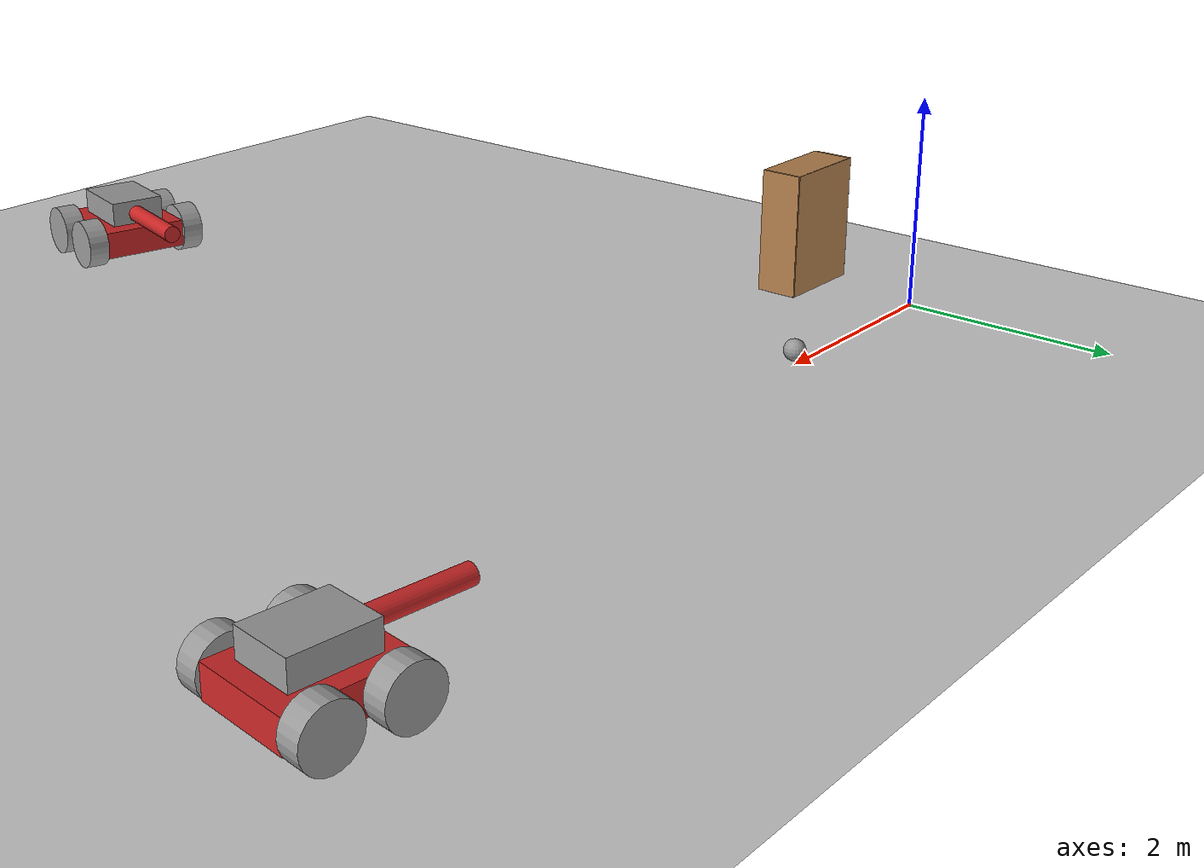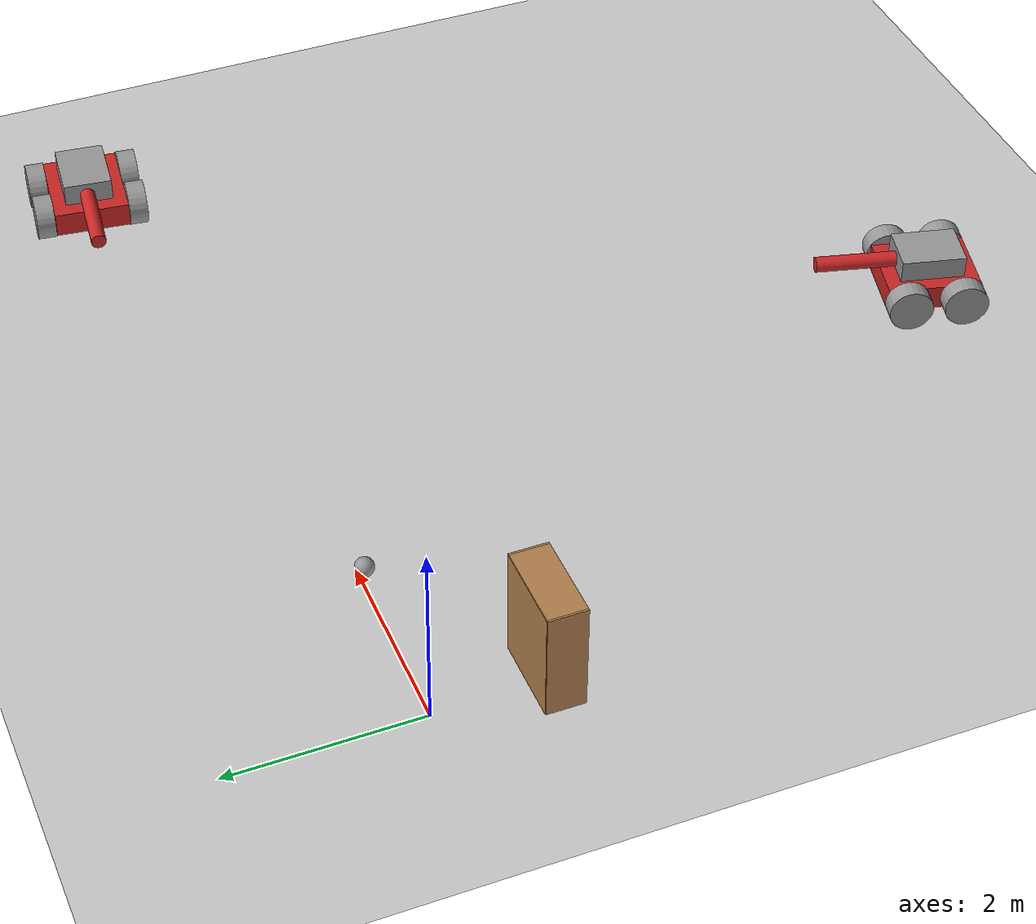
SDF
<sdf version="1.7">
 <world name="default">
  <model name="ground_plane">
   <static>1</static>
   <link name="link">
    <collision name="collision">
     <geometry><plane><normal>0 0 1</normal><size>100 100</size></plane></geometry>
     <surface>
      <contact><collide_bitmask>65535</collide_bitmask></contact>
      <friction><ode><mu>100</mu><mu2>50</mu2></ode></friction>
     </surface>
    </collision>
    <visual name="visual">
     <cast_shadows>0</cast_shadows>
     <geometry><plane><normal>0 0 1</normal><size>100 100</size></plane></geometry>
     <material>
      <script><uri>file://media/materials/scripts/gazebo.material</uri><name>Gazebo/Grey</name></script>
     </material>
    </visual>
   </link>
  </model>
  <model name="bookshelf">
   <static>1</static>
   <link name="link">
    <inertial><mass>1</mass></inertial>
    <collision name="back">
     <pose>0 0.005 0.6 0 -0 0</pose>
     <geometry><box><size>0.9 0.01 1.2</size></box></geometry>
    </collision>
    <visual name="visual1">
     <pose>0 0.005 0.6 0 -0 0</pose>
     <geometry><box><size>0.9 0.01 1.2</size></box></geometry>
     <material>
      <script><uri>file://media/materials/scripts/gazebo.material</uri><name>Gazebo/Wood</name></script>
     </material>
    </visual>
    <collision name="left_side">
     <pose>0.45 -0.195 0.6 0 -0 0</pose>
     <geometry><box><size>0.02 0.4 1.2</size></box></geometry>
    </collision>
    <visual name="visual2">
     <pose>0.45 -0.195 0.6 0 -0 0</pose>
     <geometry><box><size>0.02 0.4 1.2</size></box></geometry>
     <material>
      <script><uri>file://media/materials/scripts/gazebo.material</uri><name>Gazebo/Wood</name></script>
     </material>
    </visual>
    <collision name="right_side">
     <pose>-0.45 -0.195 0.6 0 -0 0</pose>
     <geometry><box><size>0.02 0.4 1.2</size></box></geometry>
    </collision>
    <visual name="visual3">
     <pose>-0.45 -0.195 0.6 0 -0 0</pose>
     <geometry><box><size>0.02 0.4 1.2</size></box></geometry>
     <material>
      <script><uri>file://media/materials/scripts/gazebo.material</uri><name>Gazebo/Wood</name></script>
     </material>
    </visual>
    <collision name="bottom">
     <pose>0 -0.195 0.03 0 -0 0</pose>
     <geometry><box><size>0.88 0.4 0.06</size></box></geometry>
    </collision>
    <visual name="visual4">
     <pose>0 -0.195 0.03 0 -0 0</pose>
     <geometry><box><size>0.88 0.4 0.06</size></box></geometry>
     <material>
      <script><uri>file://media/materials/scripts/gazebo.material</uri><name>Gazebo/Wood</name></script>
     </material>
    </visual>
    <collision name="top">
     <pose>0 -0.195 1.19 0 -0 0</pose>
     <geometry><box><size>0.88 0.4 0.02</size></box></geometry>
    </collision>
    <visual name="visual5">
     <pose>0 -0.195 1.19 0 -0 0</pose>
     <geometry><box><size>0.88 0.4 0.02</size></box></geometry>
     <material>
      <script><uri>file://media/materials/scripts/gazebo.material</uri><name>Gazebo/Wood</name></script>
     </material>
    </visual>
    <collision name="low_shelf">
     <pose>0 -0.195 0.43 0 -0 0</pose>
     <geometry><box><size>0.88 0.4 0.02</size></box></geometry>
    </collision>
    <visual name="visual6">
     <pose>0 -0.195 0.43 0 -0 0</pose>
     <geometry><box><size>0.88 0.4 0.02</size></box></geometry>
     <material>
      <script><uri>file://media/materials/scripts/gazebo.material</uri><name>Gazebo/Wood</name></script>
     </material>
    </visual>
    <collision name="high_shelf">
     <pose>0 -0.195 0.8 0 -0 0</pose>
     <geometry><box><size>0.88 0.4 0.02</size></box></geometry>
    </collision>
    <visual name="visual7">
     <pose>0 -0.195 0.8 0 -0 0</pose>
     <geometry><box><size>0.88 0.4 0.02</size></box></geometry>
     <material>
      <script><uri>file://media/materials/scripts/gazebo.material</uri><name>Gazebo/Wood</name></script>
     </material>
    </visual>
   </link>
   <pose>0.078975 -0.971396 0 0 -0 0</pose>
  </model>
  <model name="Tank_Turtlebot">
   <link name="link_0">
    <inertial>
     <mass>0.21345</mass>
     <inertia>
      <ixx>0.0128699</ixx>
      <ixy>0</ixy>
      <ixz>0</ixz>
      <iyy>0.019027</iyy>
      <iyz>0</iyz>
      <izz>0.0294179</izz>
     </inertia>
    </inertial>
    <pose>-0.154284 0.004173 -0.074722 0 -0 0</pose>
    <visual name="visual">
     <geometry><box><size>1 0.80861 0.263974</size></box></geometry>
     <material>
      <lighting>1</lighting>
      <script><uri>file://media/materials/scripts/gazebo.material</uri><name>Gazebo/Red</name></script>
      <shader type="pixel"><normal_map>__default__</normal_map></shader>
      <ambient>0.157 0.267 0.671 1</ambient>
      <diffuse>0.157 0.267 0.671 1</diffuse>
      <specular>0.1 0.1 0.1 1</specular>
      <emissive>0 0 0 1</emissive>
     </material>
    </visual>
    <collision name="collision">
     <geometry><box><size>1 0.80861 0.263974</size></box></geometry>
     <surface>
      <friction>
       <ode><mu>1</mu><mu2>1</mu2><fdir1>0 0 0</fdir1><slip1>0</slip1><slip2>0</slip2></ode>
       <torsional>
        <coefficient>1</coefficient>
        <patch_radius>0</patch_radius>
        <surface_radius>0</surface_radius>
        <use_patch_radius>1</use_patch_radius>
        <ode><slip>0</slip></ode>
       </torsional>
      </friction>
      <bounce><restitution_coefficient>0</restitution_coefficient><threshold>1e+06</threshold></bounce>
      <contact>
       <collide_without_contact>0</collide_without_contact>
       <collide_without_contact_bitmask>1</collide_without_contact_bitmask>
       <collide_bitmask>1</collide_bitmask>
       <ode>
        <soft_cfm>0</soft_cfm>
        <soft_erp>0.2</soft_erp>
        <kp>1e+13</kp>
        <kd>1</kd>
        <max_vel>0.01</max_vel>
        <min_depth>0</min_depth>
       </ode>
       <bullet>
        <split_impulse>1</split_impulse>
        <split_impulse_penetration_threshold>-0.01</split_impulse_penetration_threshold>
        <soft_cfm>0</soft_cfm>
        <soft_erp>0.2</soft_erp>
        <kp>1e+13</kp>
        <kd>1</kd>
       </bullet>
      </contact>
     </surface>
    </collision>
   </link>
   <link name="link_1">
    <inertial>
     <mass>0.0446444</mass>
     <inertia>
      <ixx>0.00077292</ixx>
      <ixy>0</ixy>
      <ixz>0</ixz>
      <iyy>0.00077292</iyy>
      <iyz>0</iyz>
      <izz>0.00125049</izz>
     </inertia>
    </inertial>
    <pose>-0.454284 -0.503605 -0.070717 1.5707 -0 0</pose>
    <visual name="visual">
     <geometry><cylinder><radius>0.236685</radius><length>0.199236</length></cylinder></geometry>
     <material>
      <lighting>1</lighting>
      <script><uri>file://media/materials/scripts/gazebo.material</uri><name>Gazebo/Grey</name></script>
      <shader type="pixel"><normal_map>__default__</normal_map></shader>
      <ambient>0.3 0.3 0.3 1</ambient>
      <diffuse>0.7 0.7 0.7 1</diffuse>
      <specular>0.01 0.01 0.01 1</specular>
      <emissive>0 0 0 1</emissive>
     </material>
    </visual>
    <collision name="collision">
     <geometry><cylinder><radius>0.236685</radius><length>0.199236</length></cylinder></geometry>
     <surface>
      <friction>
       <ode><mu>1</mu><mu2>1</mu2><fdir1>0 0 0</fdir1><slip1>0</slip1><slip2>0</slip2></ode>
       <torsional>
        <coefficient>1</coefficient>
        <patch_radius>0</patch_radius>
        <surface_radius>0</surface_radius>
        <use_patch_radius>1</use_patch_radius>
        <ode><slip>0</slip></ode>
       </torsional>
      </friction>
      <bounce><restitution_coefficient>0</restitution_coefficient><threshold>1e+06</threshold></bounce>
      <contact>
       <collide_without_contact>0</collide_without_contact>
       <collide_without_contact_bitmask>1</collide_without_contact_bitmask>
       <collide_bitmask>1</collide_bitmask>
       <ode>
        <soft_cfm>0</soft_cfm>
        <soft_erp>0.2</soft_erp>
        <kp>1e+13</kp>
        <kd>1</kd>
        <max_vel>0.01</max_vel>
        <min_depth>0</min_depth>
       </ode>
       <bullet>
        <split_impulse>1</split_impulse>
        <split_impulse_penetration_threshold>-0.01</split_impulse_penetration_threshold>
        <soft_cfm>0</soft_cfm>
        <soft_erp>0.2</soft_erp>
        <kp>1e+13</kp>
        <kd>1</kd>
       </bullet>
      </contact>
     </surface>
    </collision>
   </link>
   <link name="link_1_clone">
    <inertial>
     <mass>0.0446444</mass>
     <inertia>
      <ixx>0.000772923</ixx>
      <ixy>0</ixy>
      <ixz>0</ixz>
      <iyy>0.000772923</iyy>
      <iyz>0</iyz>
      <izz>0.00125049</izz>
     </inertia>
    </inertial>
    <pose>0.145716 -0.503605 -0.070717 1.5707 -0 0</pose>
    <visual name="visual">
     <geometry><cylinder><radius>0.236685</radius><length>0.199236</length></cylinder></geometry>
     <material>
      <lighting>1</lighting>
      <script><uri>file://media/materials/scripts/gazebo.material</uri><name>Gazebo/Grey</name></script>
      <shader type="pixel"><normal_map>__default__</normal_map></shader>
      <ambient>0.3 0.3 0.3 1</ambient>
      <diffuse>0.7 0.7 0.7 1</diffuse>
      <specular>0.01 0.01 0.01 1</specular>
      <emissive>0 0 0 1</emissive>
     </material>
    </visual>
    <collision name="collision">
     <geometry><cylinder><radius>0.236685</radius><length>0.199236</length></cylinder></geometry>
     <surface>
      <friction>
       <ode><mu>1</mu><mu2>1</mu2><fdir1>0 0 0</fdir1><slip1>0</slip1><slip2>0</slip2></ode>
       <torsional>
        <coefficient>1</coefficient>
        <patch_radius>0</patch_radius>
        <surface_radius>0</surface_radius>
        <use_patch_radius>1</use_patch_radius>
        <ode><slip>0</slip></ode>
       </torsional>
      </friction>
      <bounce><restitution_coefficient>0</restitution_coefficient><threshold>1e+06</threshold></bounce>
      <contact>
       <collide_without_contact>0</collide_without_contact>
       <collide_without_contact_bitmask>1</collide_without_contact_bitmask>
       <collide_bitmask>1</collide_bitmask>
       <ode>
        <soft_cfm>0</soft_cfm>
        <soft_erp>0.2</soft_erp>
        <kp>1e+13</kp>
        <kd>1</kd>
        <max_vel>0.01</max_vel>
        <min_depth>0</min_depth>
       </ode>
       <bullet>
        <split_impulse>1</split_impulse>
        <split_impulse_penetration_threshold>-0.01</split_impulse_penetration_threshold>
        <soft_cfm>0</soft_cfm>
        <soft_erp>0.2</soft_erp>
        <kp>1e+13</kp>
        <kd>1</kd>
       </bullet>
      </contact>
     </surface>
    </collision>
   </link>
   <link name="link_1_clone_0">
    <inertial>
     <mass>0.0446444</mass>
     <inertia>
      <ixx>0.000772923</ixx>
      <ixy>0</ixy>
      <ixz>0</ixz>
      <iyy>0.000772923</iyy>
      <iyz>0</iyz>
      <izz>0.00125049</izz>
     </inertia>
    </inertial>
    <pose>0.145716 0.51195 -0.070716 1.5707 -0 0</pose>
    <visual name="visual">
     <geometry><cylinder><radius>0.236685</radius><length>0.199236</length></cylinder></geometry>
     <material>
      <lighting>1</lighting>
      <script><uri>file://media/materials/scripts/gazebo.material</uri><name>Gazebo/Grey</name></script>
      <shader type="pixel"><normal_map>__default__</normal_map></shader>
      <ambient>0.3 0.3 0.3 1</ambient>
      <diffuse>0.7 0.7 0.7 1</diffuse>
      <specular>0.01 0.01 0.01 1</specular>
      <emissive>0 0 0 1</emissive>
     </material>
    </visual>
    <collision name="collision">
     <geometry><cylinder><radius>0.236685</radius><length>0.199236</length></cylinder></geometry>
     <surface>
      <friction>
       <ode><mu>1</mu><mu2>1</mu2><fdir1>0 0 0</fdir1><slip1>0</slip1><slip2>0</slip2></ode>
       <torsional>
        <coefficient>1</coefficient>
        <patch_radius>0</patch_radius>
        <surface_radius>0</surface_radius>
        <use_patch_radius>1</use_patch_radius>
        <ode><slip>0</slip></ode>
       </torsional>
      </friction>
      <bounce><restitution_coefficient>0</restitution_coefficient><threshold>1e+06</threshold></bounce>
      <contact>
       <collide_without_contact>0</collide_without_contact>
       <collide_without_contact_bitmask>1</collide_without_contact_bitmask>
       <collide_bitmask>1</collide_bitmask>
       <ode>
        <soft_cfm>0</soft_cfm>
        <soft_erp>0.2</soft_erp>
        <kp>1e+13</kp>
        <kd>1</kd>
        <max_vel>0.01</max_vel>
        <min_depth>0</min_depth>
       </ode>
       <bullet>
        <split_impulse>1</split_impulse>
        <split_impulse_penetration_threshold>-0.01</split_impulse_penetration_threshold>
        <soft_cfm>0</soft_cfm>
        <soft_erp>0.2</soft_erp>
        <kp>1e+13</kp>
        <kd>1</kd>
       </bullet>
      </contact>
     </surface>
    </collision>
   </link>
   <link name="link_1_clone_1">
    <inertial>
     <mass>0.0446444</mass>
     <inertia>
      <ixx>0.000772923</ixx>
      <ixy>0</ixy>
      <ixz>0</ixz>
      <iyy>0.000772923</iyy>
      <iyz>0</iyz>
      <izz>0.00125049</izz>
     </inertia>
    </inertial>
    <pose>-0.451249 0.510413 -0.070717 1.5707 -0 0</pose>
    <visual name="visual">
     <geometry><cylinder><radius>0.236685</radius><length>0.199236</length></cylinder></geometry>
     <material>
      <lighting>1</lighting>
      <script><uri>file://media/materials/scripts/gazebo.material</uri><name>Gazebo/Grey</name></script>
      <shader type="pixel"><normal_map>__default__</normal_map></shader>
      <ambient>0.3 0.3 0.3 1</ambient>
      <diffuse>0.7 0.7 0.7 1</diffuse>
      <specular>0.01 0.01 0.01 1</specular>
      <emissive>0 0 0 1</emissive>
     </material>
    </visual>
    <collision name="collision">
     <geometry><cylinder><radius>0.236685</radius><length>0.199236</length></cylinder></geometry>
     <surface>
      <friction>
       <ode><mu>1</mu><mu2>1</mu2><fdir1>0 0 0</fdir1><slip1>0</slip1><slip2>0</slip2></ode>
       <torsional>
        <coefficient>1</coefficient>
        <patch_radius>0</patch_radius>
        <surface_radius>0</surface_radius>
        <use_patch_radius>1</use_patch_radius>
        <ode><slip>0</slip></ode>
       </torsional>
      </friction>
      <bounce><restitution_coefficient>0</restitution_coefficient><threshold>1e+06</threshold></bounce>
      <contact>
       <collide_without_contact>0</collide_without_contact>
       <collide_without_contact_bitmask>1</collide_without_contact_bitmask>
       <collide_bitmask>1</collide_bitmask>
       <ode>
        <soft_cfm>0</soft_cfm>
        <soft_erp>0.2</soft_erp>
        <kp>1e+13</kp>
        <kd>1</kd>
        <max_vel>0.01</max_vel>
        <min_depth>0</min_depth>
       </ode>
       <bullet>
        <split_impulse>1</split_impulse>
        <split_impulse_penetration_threshold>-0.01</split_impulse_penetration_threshold>
        <soft_cfm>0</soft_cfm>
        <soft_erp>0.2</soft_erp>
        <kp>1e+13</kp>
        <kd>1</kd>
       </bullet>
      </contact>
     </surface>
    </collision>
   </link>
   <link name="link_2">
    <inertial>
     <mass>0.0852707</mass>
     <inertia>
      <ixx>0.00233413</ixx>
      <ixy>0</ixy>
      <ixz>0</ixz>
      <iyy>0.00377702</iyy>
      <iyz>0</iyz>
      <izz>0.00531271</izz>
     </inertia>
    </inertial>
    <pose>-0.154284 0.004173 0.183791 0 -0 0</pose>
    <visual name="visual">
     <geometry><box><size>0.689458 0.521821 0.237027</size></box></geometry>
     <material>
      <lighting>1</lighting>
      <script><uri>file://media/materials/scripts/gazebo.material</uri><name>Gazebo/Grey</name></script>
      <shader type="pixel"/>
      <emissive>0 0 0 1</emissive>
     </material>
    </visual>
    <collision name="collision">
     <geometry><box><size>0.689458 0.521821 0.237027</size></box></geometry>
     <surface>
      <friction>
       <ode><mu>1</mu><mu2>1</mu2><fdir1>0 0 0</fdir1><slip1>0</slip1><slip2>0</slip2></ode>
       <torsional>
        <coefficient>1</coefficient>
        <patch_radius>0</patch_radius>
        <surface_radius>0</surface_radius>
        <use_patch_radius>1</use_patch_radius>
        <ode><slip>0</slip></ode>
       </torsional>
      </friction>
      <bounce><restitution_coefficient>0</restitution_coefficient><threshold>1e+06</threshold></bounce>
      <contact>
       <collide_without_contact>0</collide_without_contact>
       <collide_without_contact_bitmask>1</collide_without_contact_bitmask>
       <collide_bitmask>1</collide_bitmask>
       <ode>
        <soft_cfm>0</soft_cfm>
        <soft_erp>0.2</soft_erp>
        <kp>1e+13</kp>
        <kd>1</kd>
        <max_vel>0.01</max_vel>
        <min_depth>0</min_depth>
       </ode>
       <bullet>
        <split_impulse>1</split_impulse>
        <split_impulse_penetration_threshold>-0.01</split_impulse_penetration_threshold>
        <soft_cfm>0</soft_cfm>
        <soft_erp>0.2</soft_erp>
        <kp>1e+13</kp>
        <kd>1</kd>
       </bullet>
      </contact>
     </surface>
    </collision>
   </link>
   <link name="link_3">
    <inertial>
     <mass>0.0231283</mass>
     <inertia>
      <ixx>0.00149352</ixx>
      <ixy>0</ixy>
      <ixz>0</ixz>
      <iyy>0.00149352</iyy>
      <iyz>0</iyz>
      <izz>7.696e-05</izz>
     </inertia>
    </inertial>
    <pose>0.627565 -0.013886 0.165156 1.57079 9.6e-05 1.56041</pose>
    <visual name="visual">
     <geometry><cylinder><radius>0.0815772</radius><length>0.868873</length></cylinder></geometry>
     <material>
      <lighting>1</lighting>
      <script><uri>file://media/materials/scripts/gazebo.material</uri><name>Gazebo/Red</name></script>
      <shader type="pixel"><normal_map>__default__</normal_map></shader>
      <ambient>0.3 0.3 0.3 1</ambient>
      <diffuse>0.7 0.7 0.7 1</diffuse>
      <specular>0.01 0.01 0.01 1</specular>
      <emissive>0 0 0 1</emissive>
     </material>
    </visual>
    <collision name="collision">
     <geometry><cylinder><radius>0.081577</radius><length>0.868873</length></cylinder></geometry>
     <surface>
      <friction>
       <ode><mu>1</mu><mu2>1</mu2><fdir1>0 0 0</fdir1><slip1>0</slip1><slip2>0</slip2></ode>
       <torsional>
        <coefficient>1</coefficient>
        <patch_radius>0</patch_radius>
        <surface_radius>0</surface_radius>
        <use_patch_radius>1</use_patch_radius>
        <ode><slip>0</slip></ode>
       </torsional>
      </friction>
      <bounce><restitution_coefficient>0</restitution_coefficient><threshold>1e+06</threshold></bounce>
      <contact>
       <collide_without_contact>0</collide_without_contact>
       <collide_without_contact_bitmask>1</collide_without_contact_bitmask>
       <collide_bitmask>1</collide_bitmask>
       <ode>
        <soft_cfm>0</soft_cfm>
        <soft_erp>0.2</soft_erp>
        <kp>1e+13</kp>
        <kd>1</kd>
        <max_vel>0.01</max_vel>
        <min_depth>0</min_depth>
       </ode>
       <bullet>
        <split_impulse>1</split_impulse>
        <split_impulse_penetration_threshold>-0.01</split_impulse_penetration_threshold>
        <soft_cfm>0</soft_cfm>
        <soft_erp>0.2</soft_erp>
        <kp>1e+13</kp>
        <kd>1</kd>
       </bullet>
      </contact>
     </surface>
    </collision>
   </link>
   <joint name="link_0_JOINT_4" type="fixed">
    <parent>link_0</parent>
    <child>link_2</child>
    <physics>
     <ode><limit><cfm>0</cfm><erp>0.2</erp></limit><suspension><cfm>0</cfm><erp>0.2</erp></suspension></ode>
    </physics>
   </joint>
   <joint name="link_0_JOINT_6" type="revolute">
    <parent>link_0</parent>
    <child>link_1_clone_0</child>
    <axis>
     <xyz>0 0 1</xyz>
     <limit>
      <lower>-1.79769e+308</lower>
      <upper>1.79769e+308</upper>
      <effort>-1</effort>
      <velocity>-1</velocity>
     </limit>
     <dynamics>
      <spring_reference>0</spring_reference>
      <spring_stiffness>0</spring_stiffness>
      <damping>0</damping>
     </dynamics>
    </axis>
    <physics>
     <ode><limit><cfm>0</cfm><erp>0.2</erp></limit><suspension><cfm>0</cfm><erp>0.2</erp></suspension></ode>
    </physics>
   </joint>
   <joint name="link_0_JOINT_7" type="revolute">
    <parent>link_0</parent>
    <child>link_1_clone</child>
    <axis>
     <xyz>0 0 1</xyz>
     <limit>
      <lower>-1.79769e+308</lower>
      <upper>1.79769e+308</upper>
      <effort>-1</effort>
      <velocity>-1</velocity>
     </limit>
     <dynamics>
      <spring_reference>0</spring_reference>
      <spring_stiffness>0</spring_stiffness>
      <damping>0</damping>
     </dynamics>
    </axis>
    <physics>
     <ode><limit><cfm>0</cfm><erp>0.2</erp></limit><suspension><cfm>0</cfm><erp>0.2</erp></suspension></ode>
    </physics>
   </joint>
   <joint name="link_0_JOINT_8" type="revolute">
    <parent>link_0</parent>
    <child>link_1_clone_1</child>
    <axis>
     <xyz>0 0 1</xyz>
     <limit>
      <lower>-1.79769e+308</lower>
      <upper>1.79769e+308</upper>
      <effort>-1</effort>
      <velocity>-1</velocity>
     </limit>
     <dynamics>
      <spring_reference>0</spring_reference>
      <spring_stiffness>0</spring_stiffness>
      <damping>0</damping>
     </dynamics>
    </axis>
    <physics>
     <ode><limit><cfm>0</cfm><erp>0.2</erp></limit><suspension><cfm>0</cfm><erp>0.2</erp></suspension></ode>
    </physics>
   </joint>
   <joint name="link_0_JOINT_9" type="revolute">
    <parent>link_0</parent>
    <child>link_1</child>
    <axis>
     <xyz>1 0 0</xyz>
     <limit>
      <lower>-1.79769e+308</lower>
      <upper>1.79769e+308</upper>
      <effort>-1</effort>
      <velocity>-1</velocity>
     </limit>
     <dynamics>
      <spring_reference>0</spring_reference>
      <spring_stiffness>0</spring_stiffness>
      <damping>0</damping>
     </dynamics>
    </axis>
    <physics>
     <ode><limit><cfm>0</cfm><erp>0.2</erp></limit><suspension><cfm>0</cfm><erp>0.2</erp></suspension></ode>
    </physics>
   </joint>
   <joint name="link_2_JOINT_4" type="fixed">
    <parent>link_2</parent>
    <child>link_3</child>
    <physics>
     <ode><limit><cfm>0</cfm><erp>0.2</erp></limit><suspension><cfm>0</cfm><erp>0.2</erp></suspension></ode>
    </physics>
   </joint>
   <static>0</static>
   <pose>3.77123 -6.93647 0.30741 0 -1e-06 1.32617</pose>
  </model>
  <model name="Tank_Turtlebot_clone">
   <link name="link_0">
    <inertial>
     <mass>0.21345</mass>
     <inertia>
      <ixx>0.0128699</ixx>
      <ixy>0</ixy>
      <ixz>0</ixz>
      <iyy>0.019027</iyy>
      <iyz>0</iyz>
      <izz>0.0294179</izz>
     </inertia>
    </inertial>
    <pose>-0.154284 0.004173 -0.074722 0 -0 0</pose>
    <visual name="visual">
     <geometry><box><size>1 0.80861 0.263974</size></box></geometry>
     <material>
      <lighting>1</lighting>
      <script><uri>file://media/materials/scripts/gazebo.material</uri><name>Gazebo/Red</name></script>
      <shader type="pixel"><normal_map>__default__</normal_map></shader>
      <ambient>0.157 0.267 0.671 1</ambient>
      <diffuse>0.157 0.267 0.671 1</diffuse>
      <specular>0.1 0.1 0.1 1</specular>
      <emissive>0 0 0 1</emissive>
     </material>
    </visual>
    <collision name="collision">
     <geometry><box><size>1 0.80861 0.263974</size></box></geometry>
     <surface>
      <friction>
       <ode><mu>1</mu><mu2>1</mu2><fdir1>0 0 0</fdir1><slip1>0</slip1><slip2>0</slip2></ode>
       <torsional>
        <coefficient>1</coefficient>
        <patch_radius>0</patch_radius>
        <surface_radius>0</surface_radius>
        <use_patch_radius>1</use_patch_radius>
        <ode><slip>0</slip></ode>
       </torsional>
      </friction>
      <bounce><restitution_coefficient>0</restitution_coefficient><threshold>1e+06</threshold></bounce>
      <contact>
       <collide_without_contact>0</collide_without_contact>
       <collide_without_contact_bitmask>1</collide_without_contact_bitmask>
       <collide_bitmask>1</collide_bitmask>
       <ode>
        <soft_cfm>0</soft_cfm>
        <soft_erp>0.2</soft_erp>
        <kp>1e+13</kp>
        <kd>1</kd>
        <max_vel>0.01</max_vel>
        <min_depth>0</min_depth>
       </ode>
       <bullet>
        <split_impulse>1</split_impulse>
        <split_impulse_penetration_threshold>-0.01</split_impulse_penetration_threshold>
        <soft_cfm>0</soft_cfm>
        <soft_erp>0.2</soft_erp>
        <kp>1e+13</kp>
        <kd>1</kd>
       </bullet>
      </contact>
     </surface>
    </collision>
   </link>
   <link name="link_1">
    <inertial>
     <mass>0.0446444</mass>
     <inertia>
      <ixx>0.00077292</ixx>
      <ixy>0</ixy>
      <ixz>0</ixz>
      <iyy>0.00077292</iyy>
      <iyz>0</iyz>
      <izz>0.00125049</izz>
     </inertia>
    </inertial>
    <pose>-0.454284 -0.503605 -0.070717 1.5707 -0 0</pose>
    <visual name="visual">
     <geometry><cylinder><radius>0.236685</radius><length>0.199236</length></cylinder></geometry>
     <material>
      <lighting>1</lighting>
      <script><uri>file://media/materials/scripts/gazebo.material</uri><name>Gazebo/Grey</name></script>
      <shader type="pixel"><normal_map>__default__</normal_map></shader>
      <ambient>0.3 0.3 0.3 1</ambient>
      <diffuse>0.7 0.7 0.7 1</diffuse>
      <specular>0.01 0.01 0.01 1</specular>
      <emissive>0 0 0 1</emissive>
     </material>
    </visual>
    <collision name="collision">
     <geometry><cylinder><radius>0.236685</radius><length>0.199236</length></cylinder></geometry>
     <surface>
      <friction>
       <ode><mu>1</mu><mu2>1</mu2><fdir1>0 0 0</fdir1><slip1>0</slip1><slip2>0</slip2></ode>
       <torsional>
        <coefficient>1</coefficient>
        <patch_radius>0</patch_radius>
        <surface_radius>0</surface_radius>
        <use_patch_radius>1</use_patch_radius>
        <ode><slip>0</slip></ode>
       </torsional>
      </friction>
      <bounce><restitution_coefficient>0</restitution_coefficient><threshold>1e+06</threshold></bounce>
      <contact>
       <collide_without_contact>0</collide_without_contact>
       <collide_without_contact_bitmask>1</collide_without_contact_bitmask>
       <collide_bitmask>1</collide_bitmask>
       <ode>
        <soft_cfm>0</soft_cfm>
        <soft_erp>0.2</soft_erp>
        <kp>1e+13</kp>
        <kd>1</kd>
        <max_vel>0.01</max_vel>
        <min_depth>0</min_depth>
       </ode>
       <bullet>
        <split_impulse>1</split_impulse>
        <split_impulse_penetration_threshold>-0.01</split_impulse_penetration_threshold>
        <soft_cfm>0</soft_cfm>
        <soft_erp>0.2</soft_erp>
        <kp>1e+13</kp>
        <kd>1</kd>
       </bullet>
      </contact>
     </surface>
    </collision>
   </link>
   <link name="link_1_clone">
    <inertial>
     <mass>0.0446444</mass>
     <inertia>
      <ixx>0.000772923</ixx>
      <ixy>0</ixy>
      <ixz>0</ixz>
      <iyy>0.000772923</iyy>
      <iyz>0</iyz>
      <izz>0.00125049</izz>
     </inertia>
    </inertial>
    <pose>0.145716 -0.503605 -0.070717 1.5707 -0 0</pose>
    <visual name="visual">
     <geometry><cylinder><radius>0.236685</radius><length>0.199236</length></cylinder></geometry>
     <material>
      <lighting>1</lighting>
      <script><uri>file://media/materials/scripts/gazebo.material</uri><name>Gazebo/Grey</name></script>
      <shader type="pixel"><normal_map>__default__</normal_map></shader>
      <ambient>0.3 0.3 0.3 1</ambient>
      <diffuse>0.7 0.7 0.7 1</diffuse>
      <specular>0.01 0.01 0.01 1</specular>
      <emissive>0 0 0 1</emissive>
     </material>
    </visual>
    <collision name="collision">
     <geometry><cylinder><radius>0.236685</radius><length>0.199236</length></cylinder></geometry>
     <surface>
      <friction>
       <ode><mu>1</mu><mu2>1</mu2><fdir1>0 0 0</fdir1><slip1>0</slip1><slip2>0</slip2></ode>
       <torsional>
        <coefficient>1</coefficient>
        <patch_radius>0</patch_radius>
        <surface_radius>0</surface_radius>
        <use_patch_radius>1</use_patch_radius>
        <ode><slip>0</slip></ode>
       </torsional>
      </friction>
      <bounce><restitution_coefficient>0</restitution_coefficient><threshold>1e+06</threshold></bounce>
      <contact>
       <collide_without_contact>0</collide_without_contact>
       <collide_without_contact_bitmask>1</collide_without_contact_bitmask>
       <collide_bitmask>1</collide_bitmask>
       <ode>
        <soft_cfm>0</soft_cfm>
        <soft_erp>0.2</soft_erp>
        <kp>1e+13</kp>
        <kd>1</kd>
        <max_vel>0.01</max_vel>
        <min_depth>0</min_depth>
       </ode>
       <bullet>
        <split_impulse>1</split_impulse>
        <split_impulse_penetration_threshold>-0.01</split_impulse_penetration_threshold>
        <soft_cfm>0</soft_cfm>
        <soft_erp>0.2</soft_erp>
        <kp>1e+13</kp>
        <kd>1</kd>
       </bullet>
      </contact>
     </surface>
    </collision>
   </link>
   <link name="link_1_clone_0">
    <inertial>
     <mass>0.0446444</mass>
     <inertia>
      <ixx>0.000772923</ixx>
      <ixy>0</ixy>
      <ixz>0</ixz>
      <iyy>0.000772923</iyy>
      <iyz>0</iyz>
      <izz>0.00125049</izz>
     </inertia>
    </inertial>
    <pose>0.145716 0.51195 -0.070716 1.5707 -0 0</pose>
    <visual name="visual">
     <geometry><cylinder><radius>0.236685</radius><length>0.199236</length></cylinder></geometry>
     <material>
      <lighting>1</lighting>
      <script><uri>file://media/materials/scripts/gazebo.material</uri><name>Gazebo/Grey</name></script>
      <shader type="pixel"><normal_map>__default__</normal_map></shader>
      <ambient>0.3 0.3 0.3 1</ambient>
      <diffuse>0.7 0.7 0.7 1</diffuse>
      <specular>0.01 0.01 0.01 1</specular>
      <emissive>0 0 0 1</emissive>
     </material>
    </visual>
    <collision name="collision">
     <geometry><cylinder><radius>0.236685</radius><length>0.199236</length></cylinder></geometry>
     <surface>
      <friction>
       <ode><mu>1</mu><mu2>1</mu2><fdir1>0 0 0</fdir1><slip1>0</slip1><slip2>0</slip2></ode>
       <torsional>
        <coefficient>1</coefficient>
        <patch_radius>0</patch_radius>
        <surface_radius>0</surface_radius>
        <use_patch_radius>1</use_patch_radius>
        <ode><slip>0</slip></ode>
       </torsional>
      </friction>
      <bounce><restitution_coefficient>0</restitution_coefficient><threshold>1e+06</threshold></bounce>
      <contact>
       <collide_without_contact>0</collide_without_contact>
       <collide_without_contact_bitmask>1</collide_without_contact_bitmask>
       <collide_bitmask>1</collide_bitmask>
       <ode>
        <soft_cfm>0</soft_cfm>
        <soft_erp>0.2</soft_erp>
        <kp>1e+13</kp>
        <kd>1</kd>
        <max_vel>0.01</max_vel>
        <min_depth>0</min_depth>
       </ode>
       <bullet>
        <split_impulse>1</split_impulse>
        <split_impulse_penetration_threshold>-0.01</split_impulse_penetration_threshold>
        <soft_cfm>0</soft_cfm>
        <soft_erp>0.2</soft_erp>
        <kp>1e+13</kp>
        <kd>1</kd>
       </bullet>
      </contact>
     </surface>
    </collision>
   </link>
   <link name="link_1_clone_1">
    <inertial>
     <mass>0.0446444</mass>
     <inertia>
      <ixx>0.000772923</ixx>
      <ixy>0</ixy>
      <ixz>0</ixz>
      <iyy>0.000772923</iyy>
      <iyz>0</iyz>
      <izz>0.00125049</izz>
     </inertia>
    </inertial>
    <pose>-0.451249 0.510413 -0.070717 1.5707 -0 0</pose>
    <visual name="visual">
     <geometry><cylinder><radius>0.236685</radius><length>0.199236</length></cylinder></geometry>
     <material>
      <lighting>1</lighting>
      <script><uri>file://media/materials/scripts/gazebo.material</uri><name>Gazebo/Grey</name></script>
      <shader type="pixel"><normal_map>__default__</normal_map></shader>
      <ambient>0.3 0.3 0.3 1</ambient>
      <diffuse>0.7 0.7 0.7 1</diffuse>
      <specular>0.01 0.01 0.01 1</specular>
      <emissive>0 0 0 1</emissive>
     </material>
    </visual>
    <collision name="collision">
     <geometry><cylinder><radius>0.236685</radius><length>0.199236</length></cylinder></geometry>
     <surface>
      <friction>
       <ode><mu>1</mu><mu2>1</mu2><fdir1>0 0 0</fdir1><slip1>0</slip1><slip2>0</slip2></ode>
       <torsional>
        <coefficient>1</coefficient>
        <patch_radius>0</patch_radius>
        <surface_radius>0</surface_radius>
        <use_patch_radius>1</use_patch_radius>
        <ode><slip>0</slip></ode>
       </torsional>
      </friction>
      <bounce><restitution_coefficient>0</restitution_coefficient><threshold>1e+06</threshold></bounce>
      <contact>
       <collide_without_contact>0</collide_without_contact>
       <collide_without_contact_bitmask>1</collide_without_contact_bitmask>
       <collide_bitmask>1</collide_bitmask>
       <ode>
        <soft_cfm>0</soft_cfm>
        <soft_erp>0.2</soft_erp>
        <kp>1e+13</kp>
        <kd>1</kd>
        <max_vel>0.01</max_vel>
        <min_depth>0</min_depth>
       </ode>
       <bullet>
        <split_impulse>1</split_impulse>
        <split_impulse_penetration_threshold>-0.01</split_impulse_penetration_threshold>
        <soft_cfm>0</soft_cfm>
        <soft_erp>0.2</soft_erp>
        <kp>1e+13</kp>
        <kd>1</kd>
       </bullet>
      </contact>
     </surface>
    </collision>
   </link>
   <link name="link_2">
    <inertial>
     <mass>0.0852707</mass>
     <inertia>
      <ixx>0.00233413</ixx>
      <ixy>0</ixy>
      <ixz>0</ixz>
      <iyy>0.00377702</iyy>
      <iyz>0</iyz>
      <izz>0.00531271</izz>
     </inertia>
    </inertial>
    <pose>-0.154284 0.004173 0.183791 0 -0 0</pose>
    <visual name="visual">
     <geometry><box><size>0.689458 0.521821 0.237027</size></box></geometry>
     <material>
      <lighting>1</lighting>
      <script><uri>file://media/materials/scripts/gazebo.material</uri><name>Gazebo/Grey</name></script>
      <shader type="pixel"/>
      <emissive>0 0 0 1</emissive>
     </material>
    </visual>
    <collision name="collision">
     <geometry><box><size>0.689458 0.521821 0.237027</size></box></geometry>
     <surface>
      <friction>
       <ode><mu>1</mu><mu2>1</mu2><fdir1>0 0 0</fdir1><slip1>0</slip1><slip2>0</slip2></ode>
       <torsional>
        <coefficient>1</coefficient>
        <patch_radius>0</patch_radius>
        <surface_radius>0</surface_radius>
        <use_patch_radius>1</use_patch_radius>
        <ode><slip>0</slip></ode>
       </torsional>
      </friction>
      <bounce><restitution_coefficient>0</restitution_coefficient><threshold>1e+06</threshold></bounce>
      <contact>
       <collide_without_contact>0</collide_without_contact>
       <collide_without_contact_bitmask>1</collide_without_contact_bitmask>
       <collide_bitmask>1</collide_bitmask>
       <ode>
        <soft_cfm>0</soft_cfm>
        <soft_erp>0.2</soft_erp>
        <kp>1e+13</kp>
        <kd>1</kd>
        <max_vel>0.01</max_vel>
        <min_depth>0</min_depth>
       </ode>
       <bullet>
        <split_impulse>1</split_impulse>
        <split_impulse_penetration_threshold>-0.01</split_impulse_penetration_threshold>
        <soft_cfm>0</soft_cfm>
        <soft_erp>0.2</soft_erp>
        <kp>1e+13</kp>
        <kd>1</kd>
       </bullet>
      </contact>
     </surface>
    </collision>
   </link>
   <link name="link_3">
    <inertial>
     <mass>0.0231283</mass>
     <inertia>
      <ixx>0.00149352</ixx>
      <ixy>0</ixy>
      <ixz>0</ixz>
      <iyy>0.00149352</iyy>
      <iyz>0</iyz>
      <izz>7.696e-05</izz>
     </inertia>
    </inertial>
    <pose>0.627565 -0.013886 0.165156 1.57079 9.6e-05 1.56041</pose>
    <visual name="visual">
     <geometry><cylinder><radius>0.0815772</radius><length>0.868873</length></cylinder></geometry>
     <material>
      <lighting>1</lighting>
      <script><uri>file://media/materials/scripts/gazebo.material</uri><name>Gazebo/Red</name></script>
      <shader type="pixel"><normal_map>__default__</normal_map></shader>
      <ambient>0.3 0.3 0.3 1</ambient>
      <diffuse>0.7 0.7 0.7 1</diffuse>
      <specular>0.01 0.01 0.01 1</specular>
      <emissive>0 0 0 1</emissive>
     </material>
    </visual>
    <collision name="collision">
     <geometry><cylinder><radius>0.081577</radius><length>0.868873</length></cylinder></geometry>
     <surface>
      <friction>
       <ode><mu>1</mu><mu2>1</mu2><fdir1>0 0 0</fdir1><slip1>0</slip1><slip2>0</slip2></ode>
       <torsional>
        <coefficient>1</coefficient>
        <patch_radius>0</patch_radius>
        <surface_radius>0</surface_radius>
        <use_patch_radius>1</use_patch_radius>
        <ode><slip>0</slip></ode>
       </torsional>
      </friction>
      <bounce><restitution_coefficient>0</restitution_coefficient><threshold>1e+06</threshold></bounce>
      <contact>
       <collide_without_contact>0</collide_without_contact>
       <collide_without_contact_bitmask>1</collide_without_contact_bitmask>
       <collide_bitmask>1</collide_bitmask>
       <ode>
        <soft_cfm>0</soft_cfm>
        <soft_erp>0.2</soft_erp>
        <kp>1e+13</kp>
        <kd>1</kd>
        <max_vel>0.01</max_vel>
        <min_depth>0</min_depth>
       </ode>
       <bullet>
        <split_impulse>1</split_impulse>
        <split_impulse_penetration_threshold>-0.01</split_impulse_penetration_threshold>
        <soft_cfm>0</soft_cfm>
        <soft_erp>0.2</soft_erp>
        <kp>1e+13</kp>
        <kd>1</kd>
       </bullet>
      </contact>
     </surface>
    </collision>
   </link>
   <joint name="link_0_JOINT_4" type="fixed">
    <parent>link_0</parent>
    <child>link_2</child>
    <physics>
     <ode><limit><cfm>0</cfm><erp>0.2</erp></limit><suspension><cfm>0</cfm><erp>0.2</erp></suspension></ode>
    </physics>
   </joint>
   <joint name="link_0_JOINT_6" type="revolute">
    <parent>link_0</parent>
    <child>link_1_clone_0</child>
    <axis>
     <xyz>0 0 1</xyz>
     <limit>
      <lower>-1.79769e+308</lower>
      <upper>1.79769e+308</upper>
      <effort>-1</effort>
      <velocity>-1</velocity>
     </limit>
     <dynamics>
      <spring_reference>0</spring_reference>
      <spring_stiffness>0</spring_stiffness>
      <damping>0</damping>
     </dynamics>
    </axis>
    <physics>
     <ode><limit><cfm>0</cfm><erp>0.2</erp></limit><suspension><cfm>0</cfm><erp>0.2</erp></suspension></ode>
    </physics>
   </joint>
   <joint name="link_0_JOINT_7" type="revolute">
    <parent>link_0</parent>
    <child>link_1_clone</child>
    <axis>
     <xyz>0 0 1</xyz>
     <limit>
      <lower>-1.79769e+308</lower>
      <upper>1.79769e+308</upper>
      <effort>-1</effort>
      <velocity>-1</velocity>
     </limit>
     <dynamics>
      <spring_reference>0</spring_reference>
      <spring_stiffness>0</spring_stiffness>
      <damping>0</damping>
     </dynamics>
    </axis>
    <physics>
     <ode><limit><cfm>0</cfm><erp>0.2</erp></limit><suspension><cfm>0</cfm><erp>0.2</erp></suspension></ode>
    </physics>
   </joint>
   <joint name="link_0_JOINT_8" type="revolute">
    <parent>link_0</parent>
    <child>link_1_clone_1</child>
    <axis>
     <xyz>0 0 1</xyz>
     <limit>
      <lower>-1.79769e+308</lower>
      <upper>1.79769e+308</upper>
      <effort>-1</effort>
      <velocity>-1</velocity>
     </limit>
     <dynamics>
      <spring_reference>0</spring_reference>
      <spring_stiffness>0</spring_stiffness>
      <damping>0</damping>
     </dynamics>
    </axis>
    <physics>
     <ode><limit><cfm>0</cfm><erp>0.2</erp></limit><suspension><cfm>0</cfm><erp>0.2</erp></suspension></ode>
    </physics>
   </joint>
   <joint name="link_0_JOINT_9" type="revolute">
    <parent>link_0</parent>
    <child>link_1</child>
    <axis>
     <xyz>1 0 0</xyz>
     <limit>
      <lower>-1.79769e+308</lower>
      <upper>1.79769e+308</upper>
      <effort>-1</effort>
      <velocity>-1</velocity>
     </limit>
     <dynamics>
      <spring_reference>0</spring_reference>
      <spring_stiffness>0</spring_stiffness>
      <damping>0</damping>
     </dynamics>
    </axis>
    <physics>
     <ode><limit><cfm>0</cfm><erp>0.2</erp></limit><suspension><cfm>0</cfm><erp>0.2</erp></suspension></ode>
    </physics>
   </joint>
   <joint name="link_2_JOINT_4" type="fixed">
    <parent>link_2</parent>
    <child>link_3</child>
    <physics>
     <ode><limit><cfm>0</cfm><erp>0.2</erp></limit><suspension><cfm>0</cfm><erp>0.2</erp></suspension></ode>
    </physics>
   </joint>
   <static>0</static>
   <pose>8.32221 0.880371 0.30741 -0 -2e-06 3.0246</pose>
  </model>
  <model name="my_ball">
   <link name="link_0">
    <inertial>
     <mass>1</mass>
     <inertia><ixx>0.1</ixx><ixy>0</ixy><ixz>0</ixz><iyy>0.1</iyy><iyz>0</iyz><izz>0.1</izz></inertia>
    </inertial>
    <visual name="visual">
     <geometry><sphere><radius>0.1</radius></sphere></geometry>
     <material>
      <lighting>1</lighting>
      <script><uri>file://media/materials/scripts/gazebo.material</uri><name>Gazebo/Grey</name></script>
      <shader type="pixel"><normal_map>__default__</normal_map></shader>
      <ambient>1 1 1 1</ambient>
      <diffuse>1 1 1 1</diffuse>
      <specular>1 1 1 1</specular>
      <emissive>1 1 1 1</emissive>
     </material>
    </visual>
    <collision name="collision">
     <geometry><sphere><radius>0.1</radius></sphere></geometry>
     <surface>
      <friction>
       <ode><mu>1</mu><mu2>1</mu2><fdir1>0 0 0</fdir1><slip1>0</slip1><slip2>0</slip2></ode>
       <torsional>
        <coefficient>1</coefficient>
        <patch_radius>0</patch_radius>
        <surface_radius>0</surface_radius>
        <use_patch_radius>1</use_patch_radius>
        <ode><slip>0</slip></ode>
       </torsional>
      </friction>
      <bounce><restitution_coefficient>0</restitution_coefficient><threshold>1e+06</threshold></bounce>
      <contact>
       <collide_without_contact>0</collide_without_contact>
       <collide_without_contact_bitmask>1</collide_without_contact_bitmask>
       <collide_bitmask>1</collide_bitmask>
       <ode>
        <soft_cfm>0</soft_cfm>
        <soft_erp>0.2</soft_erp>
        <kp>1e+13</kp>
        <kd>1</kd>
        <max_vel>0.01</max_vel>
        <min_depth>0</min_depth>
       </ode>
       <bullet>
        <split_impulse>1</split_impulse>
        <split_impulse_penetration_threshold>-0.01</split_impulse_penetration_threshold>
        <soft_cfm>0</soft_cfm>
        <soft_erp>0.2</soft_erp>
        <kp>1e+13</kp>
        <kd>1</kd>
       </bullet>
      </contact>
     </surface>
    </collision>
   </link>
   <static>0</static>
   <pose>1.91561 -0.059916 0.1 0 -0 0</pose>
  </model>
 </world>
</sdf>
